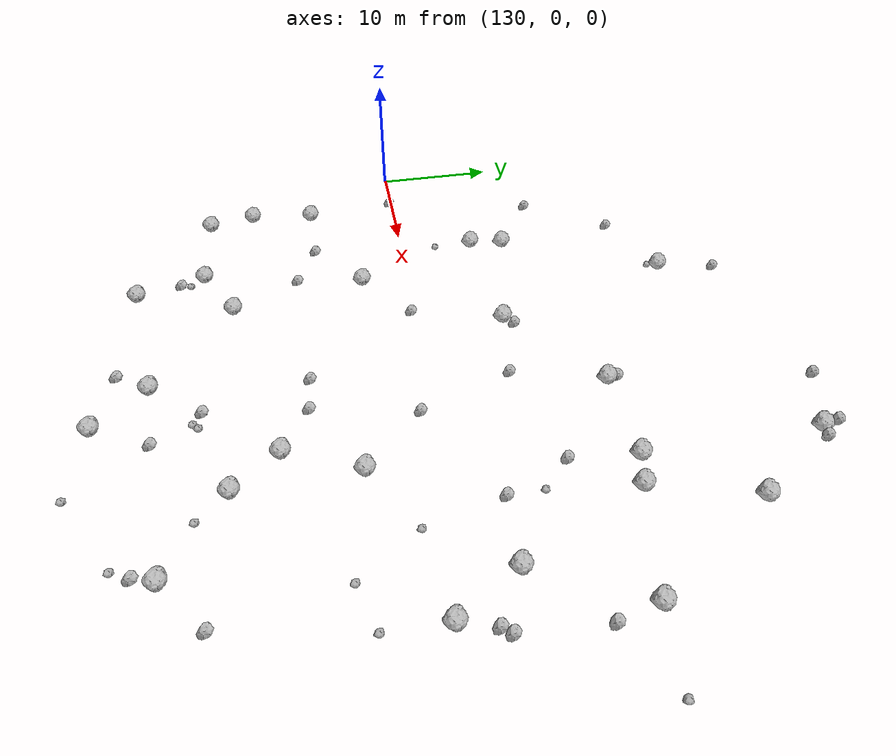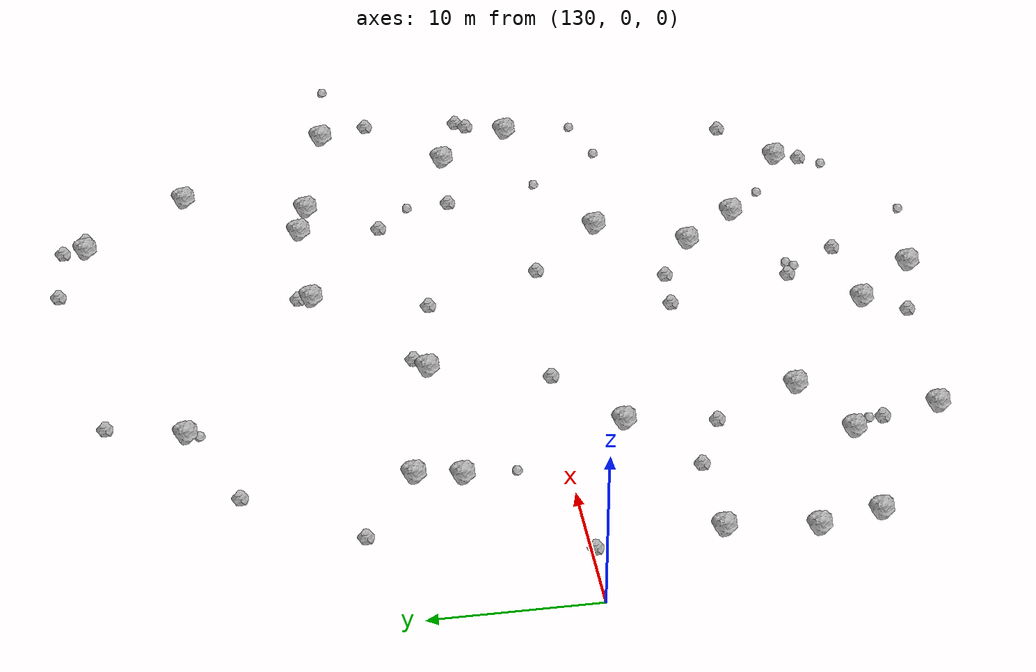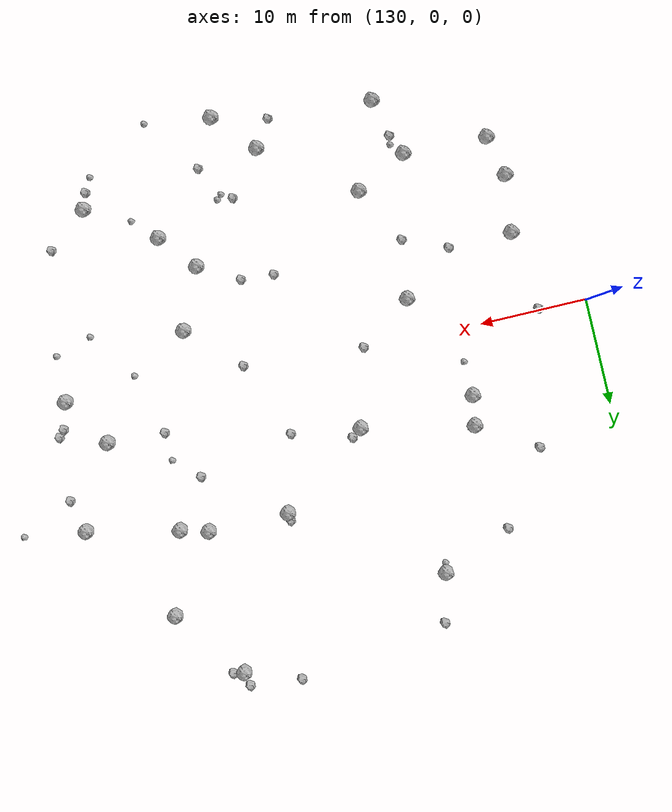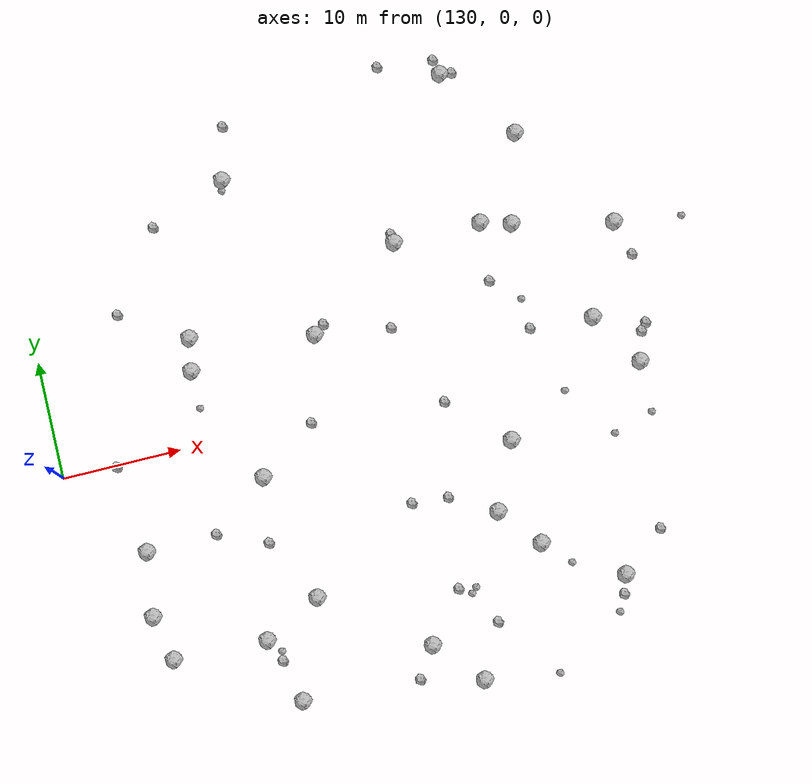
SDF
<sdf version="1.6">
 <world name="default">
  <include><uri>model://sun</uri></include>
  <model name="rock1_4_2">
   <include><uri>model://rock1</uri><pose>156.55190030596324 -20.699701821937566 0.5 0 0 0</pose></include>
  </model>
  <model name="rock1_4_3">
   <include><uri>model://rock1</uri><pose>171.6808532269416 12.082391812637354 0.5 0 0 0</pose></include>
  </model>
  <model name="rock1_4_4">
   <include><uri>model://rock1</uri><pose>160.0164314335576 -24.443391188889567 0.5 0 0 0</pose></include>
  </model>
  <model name="rock1_4_5">
   <include><uri>model://rock1</uri><pose>145.14550093353154 -22.565141930781145 0.5 0 0 0</pose></include>
  </model>
  <model name="rock1_4_6">
   <include><uri>model://rock1</uri><pose>142.87484542201054 8.960463245914752 0.5 0 0 0</pose></include>
  </model>
  <model name="rock1_4_7">
   <include><uri>model://rock1</uri><pose>168.95945125142754 26.27035598087818 0.5 0 0 0</pose></include>
  </model>
  <model name="rock1_4_8">
   <include><uri>model://rock1</uri><pose>135.43606251298655 -7.675649517801549 0.5 0 0 0</pose></include>
  </model>
  <model name="rock1_4_9">
   <include><uri>model://rock1</uri><pose>148.64472385785018 21.602620651626786 0.5 0 0 0</pose></include>
  </model>
  <model name="rock1_4_10">
   <include><uri>model://rock1</uri><pose>135.61752780913298 -16.800192219031132 0.5 0 0 0</pose></include>
  </model>
  <model name="rock1_4_11">
   <include><uri>model://rock1</uri><pose>143.44626677102656 -17.102489563954272 0.5 0 0 0</pose></include>
  </model>
  <model name="rock1_4_12">
   <include><uri>model://rock1</uri><pose>167.33822398496406 -14.716135589997887 0.5 0 0 0</pose></include>
  </model>
  <model name="rock1_4_13">
   <include><uri>model://rock1</uri><pose>180.17329985159066 10.173056215908659 0.5 0 0 0</pose></include>
  </model>
  <model name="rock1_4_14">
   <include><uri>model://rock1</uri><pose>167.0695074714759 -5.8162049187527245 0.5 0 0 0</pose></include>
  </model>
  <model name="rock1_4_15">
   <include><uri>model://rock1</uri><pose>153.20961147262776 6.750283681225923 0.5 0 0 0</pose></include>
  </model>
  <model name="rock1_4_16">
   <include><uri>model://rock1</uri><pose>134.7453282895212 -13.005926899591195 0.5 0 0 0</pose></include>
  </model>
  <model name="rock1_4_17">
   <include><uri>model://rock1</uri><pose>179.23551700114893 -1.9243308172375926 0.5 0 0 0</pose></include>
  </model>
  <model name="rock1_4_18">
   <include><uri>model://rock1</uri><pose>142.4073713095714 6.19584380004958 0.5 0 0 0</pose></include>
  </model>
  <model name="rock1_4_19">
   <include><uri>model://rock1</uri><pose>173.47895694256755 -18.875066497704807 0.5 0 0 0</pose></include>
  </model>
  <model name="rock1_4_20">
   <include><uri>model://rock1</uri><pose>169.10427497673186 12.800267222306076 0.5 0 0 0</pose></include>
  </model>
  <model name="rock1_4_21">
   <include><uri>model://rock1</uri><pose>148.25257998385402 -14.668296823609335 0.5 0 0 0</pose></include>
  </model>
  <model name="rock1_4_22">
   <include><uri>model://rock1</uri><pose>176.32431750031628 2.646031423937913 0.5 0 0 0</pose></include>
  </model>
  <model name="rock1_4_23">
   <include><uri>model://rock1</uri><pose>164.5067940401754 -11.330918424935653 0.5 0 0 0</pose></include>
  </model>
  <model name="rock1_4_24">
   <include><uri>model://rock1</uri><pose>161.58700666229018 12.84355273171164 0.5 0 0 0</pose></include>
  </model>
  <model name="rock1_4_25">
   <include><uri>model://rock1</uri><pose>173.9472635627224 19.70168265831669 0.5 0 0 0</pose></include>
  </model>
  <model name="rock1_4_26">
   <include><uri>model://rock1</uri><pose>146.22881020747147 -3.9268102155662845 0.5 0 0 0</pose></include>
  </model>
  <model name="rock2_4_0">
   <include><uri>model://rock2</uri><pose>180.95439172469682 7.129671638830743 0.3 0 0 0</pose></include>
  </model>
  <model name="rock2_4_1">
   <include><uri>model://rock2</uri><pose>159.59084789998585 5.810222646686611 0.3 0 0 0</pose></include>
  </model>
  <model name="rock2_4_2">
   <include><uri>model://rock2</uri><pose>162.250065835166 -20.150398064896486 0.3 0 0 0</pose></include>
  </model>
  <model name="rock2_4_3">
   <include><uri>model://rock2</uri><pose>137.3999422270468 12.374736295027347 0.3 0 0 0</pose></include>
  </model>
  <model name="rock2_4_4">
   <include><uri>model://rock2</uri><pose>180.01078402707293 0.5351982702310139 0.3 0 0 0</pose></include>
  </model>
  <model name="rock2_4_5">
   <include><uri>model://rock2</uri><pose>169.94920130049414 26.181625928296825 0.3 0 0 0</pose></include>
  </model>
  <model name="rock2_4_6">
   <include><uri>model://rock2</uri><pose>170.95350687546448 2.9929180175398713 0.3 0 0 0</pose></include>
  </model>
  <model name="rock2_4_7">
   <include><uri>model://rock2</uri><pose>154.88659036106463 -23.176549973326185 0.3 0 0 0</pose></include>
  </model>
  <model name="rock2_4_8">
   <include><uri>model://rock2</uri><pose>159.75525458601862 -16.74900893729286 0.3 0 0 0</pose></include>
  </model>
  <model name="rock2_4_9">
   <include><uri>model://rock2</uri><pose>149.75113700309876 26.210017589253894 0.3 0 0 0</pose></include>
  </model>
  <model name="rock2_4_10">
   <include><uri>model://rock2</uri><pose>168.6234295328788 7.752451245107039 0.3 0 0 0</pose></include>
  </model>
  <model name="rock2_4_11">
   <include><uri>model://rock2</uri><pose>144.28124452481237 -19.017177209048526 0.3 0 0 0</pose></include>
  </model>
  <model name="rock2_4_12">
   <include><uri>model://rock2</uri><pose>157.700917548369 -8.964324994108097 0.3 0 0 0</pose></include>
  </model>
  <model name="rock2_4_13">
   <include><uri>model://rock2</uri><pose>162.41869474665597 -1.3527292742720078 0.3 0 0 0</pose></include>
  </model>
  <model name="rock2_4_14">
   <include><uri>model://rock2</uri><pose>161.48399784761762 13.64649376417617 0.3 0 0 0</pose></include>
  </model>
  <model name="rock2_4_15">
   <include><uri>model://rock2</uri><pose>168.67209707404666 27.651246366201754 0.3 0 0 0</pose></include>
  </model>
  <model name="rock2_4_16">
   <include><uri>model://rock2</uri><pose>134.5309285579809 -0.17735337728371547 0.3 0 0 0</pose></include>
  </model>
  <model name="rock2_4_17">
   <include><uri>model://rock2</uri><pose>172.94861917051492 -20.392241295566294 0.3 0 0 0</pose></include>
  </model>
  <model name="rock2_4_18">
   <include><uri>model://rock2</uri><pose>154.09878180289581 7.479232125480259 0.3 0 0 0</pose></include>
  </model>
  <model name="rock2_4_19">
   <include><uri>model://rock2</uri><pose>141.32813620493192 -7.614955935187197 0.3 0 0 0</pose></include>
  </model>
  <model name="rock2_4_20">
   <include><uri>model://rock2</uri><pose>177.23983748427875 -15.882073188950717 0.3 0 0 0</pose></include>
  </model>
  <model name="rock2_4_21">
   <include><uri>model://rock2</uri><pose>180.548886396912 1.1688520434191254 0.3 0 0 0</pose></include>
  </model>
  <model name="rock2_4_22">
   <include><uri>model://rock2</uri><pose>145.4056136753993 -9.342361619649601 0.3 0 0 0</pose></include>
  </model>
  <model name="rock2_4_23">
   <include><uri>model://rock2</uri><pose>151.15000774385555 -0.4276431086621493 0.3 0 0 0</pose></include>
  </model>
  <model name="rock2_4_24">
   <include><uri>model://rock2</uri><pose>163.8666444254509 28.187375128754255 0.3 0 0 0</pose></include>
  </model>
  <model name="rock2_4_25">
   <include><uri>model://rock2</uri><pose>160.7748894709311 -9.200991516305113 0.3 0 0 0</pose></include>
  </model>
  <model name="rock2_4_26">
   <include><uri>model://rock2</uri><pose>142.01060570594817 19.01799945616873 0.3 0 0 0</pose></include>
  </model>
  <model name="rock3_4_0">
   <include><uri>model://rock3</uri><pose>172.20543881194533 -21.75694537149445 0.2 0 0 0</pose></include>
  </model>
  <model name="rock3_4_1">
   <include><uri>model://rock3</uri><pose>160.72913539525305 -17.385085160575656 0.2 0 0 0</pose></include>
  </model>
  <model name="rock3_4_2">
   <include><uri>model://rock3</uri><pose>166.1533486217559 -25.414463481106427 0.2 0 0 0</pose></include>
  </model>
  <model name="rock3_4_3">
   <include><uri>model://rock3</uri><pose>148.3918767127294 20.74090298210949 0.2 0 0 0</pose></include>
  </model>
  <model name="rock3_4_4">
   <include><uri>model://rock3</uri><pose>185.89093583228708 9.375477401791912 0.2 0 0 0</pose></include>
  </model>
  <model name="rock3_4_5">
   <include><uri>model://rock3</uri><pose>175.62041700578132 -7.309601973106584 0.2 0 0 0</pose></include>
  </model>
  <model name="rock3_4_6">
   <include><uri>model://rock3</uri><pose>172.4541622624642 -2.8313513073375134 0.2 0 0 0</pose></include>
  </model>
  <model name="rock3_4_7">
   <include><uri>model://rock3</uri><pose>179.07553773091502 -6.283485264006824 0.2 0 0 0</pose></include>
  </model>
  <model name="rock3_4_8">
   <include><uri>model://rock3</uri><pose>170.85823279360739 5.6158604507553775 0.2 0 0 0</pose></include>
  </model>
  <model name="rock3_4_9">
   <include><uri>model://rock3</uri><pose>144.37325803457642 -18.24390599263718 0.2 0 0 0</pose></include>
  </model>
  <model name="rock3_4_10">
   <include><uri>model://rock3</uri><pose>169.40507163605915 -16.88504065542665 0.2 0 0 0</pose></include>
  </model>
  <model name="rock3_4_11">
   <include><uri>model://rock3</uri><pose>161.17106122434012 -16.97665435389675 0.2 0 0 0</pose></include>
  </model>
  <model name="rock3_4_12">
   <include><uri>model://rock3</uri><pose>142.37783115437134 2.9800478468098675 0.2 0 0 0</pose></include>
  </model>
 </world>
</sdf>
